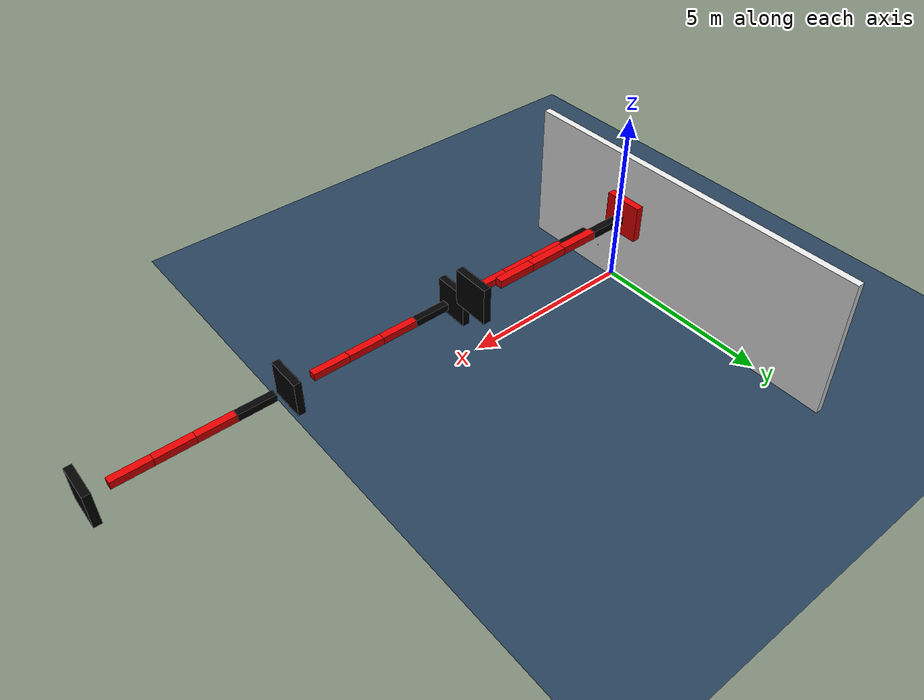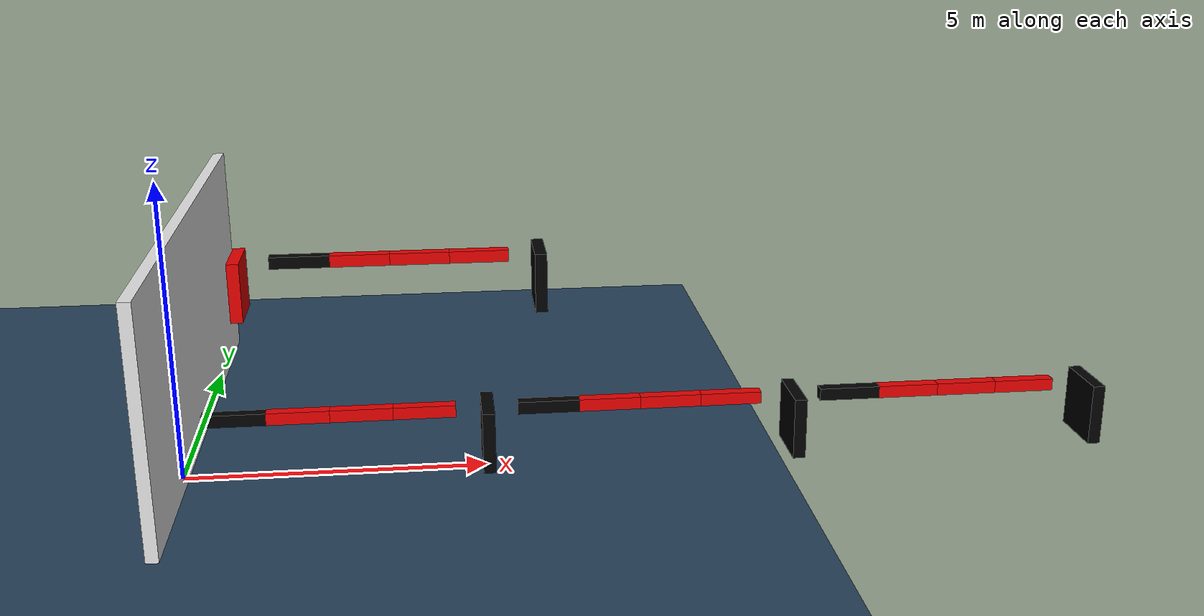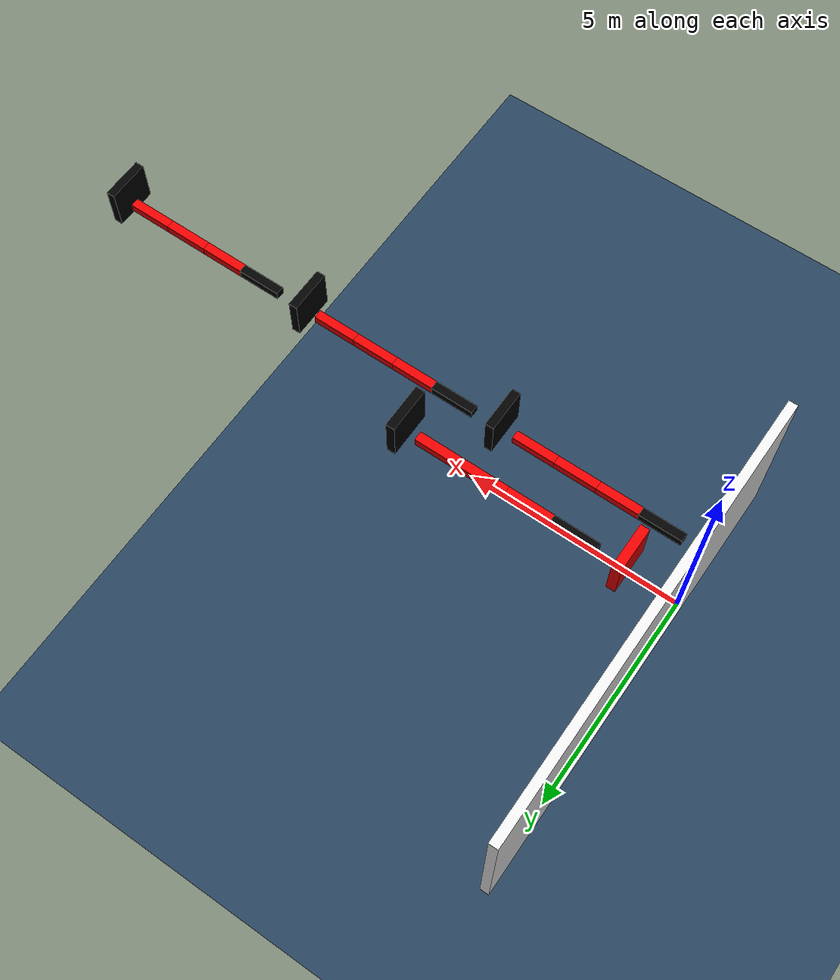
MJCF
<mujoco><option gravity="0 0 -9.81" /><worldbody><light diffuse="0.8 0.8 0.8" pos="0 0 3" dir="0 0 -1" /><geom size="10 10 .05" type="plane" material="grid" condim="3" /><body name="chassis" pos="0 2 2"><joint type="free" /><geom type="box" size=".1 5 2" rgba=".9 .9 .9 1" mass="100" /><body name="module__0module-top" pos="1 -1 1"><joint type="hinge" axis="1 0 0" range="-45 45" /><geom type="box" name="module__0geom_free_plate" size=".1 .5 .5" rgba="0.9 0 0 1" /><body name="module__0slide_box" pos="1 0.3 0.3"><joint name="module__0slide_box_joint" type="slide" axis="1 0 0" range="-0.5 0.5" /><geom type="box" name="module__0slide_box_body" size="0.5 0.1 0.1" rgba=" 0 0 0 1" /><body name="module__0hingex_box_body" pos="1 0 0"><joint name="module__0hingex_box_joint" type="hinge" axis="1 0 0" range="-45 45" /><geom type="box" name="module__0geom_hingex_box" size="0.5 0.1 0.1" rgba="0.9 0 0 1" /><body name="module__0hingey_box_body" pos="1 0 0"><joint name="module__0hingey_box_joint" type="hinge" axis="0 1 0" range="-45 45" /><geom type="box" name="module__0geom_hingey_box" size="0.5 0.1 0.1" rgba="0.9 0 0 1" /><body name="module__0hingez_box_body" pos="1 0 0"><joint name="module__0hingez_box_joint" type="hinge" axis="0 0 1" range="-45 45" /><geom type="box" name="module__0geom_hingez_box" size="0.5 0.1 0.1" rgba="0.9 0 0 1" /><body name="module__0slide_plate" pos="1 -0.3 -0.3"><joint name="module__0slide_plate_joint" type="slide" range="-0.5 0.5" /><geom type="box" name="module__0slide_plate" size="0.1 .5 .5" rgba="0 0 0 1" /></body></body></body></body></body></body><body name="module__1module-top" pos="0 -3 -1"><joint type="hinge" axis="1 0 0" range="-45 45" /><geom type="box" name="module__1geom_free_plate" size=".1 .5 .5" rgba="0.9 0 0 1" /><body name="module__1slide_box" pos="1 0.3 0.3"><joint name="module__1slide_box_joint" type="slide" axis="1 0 0" range="-0.5 0.5" /><geom type="box" name="module__1slide_box_body" size="0.5 0.1 0.1" rgba=" 0 0 0 1" /><body name="module__1hingex_box_body" pos="1 0 0"><joint name="module__1hingex_box_joint" type="hinge" axis="1 0 0" range="-45 45" /><geom type="box" name="module__1geom_hingex_box" size="0.5 0.1 0.1" rgba="0.9 0 0 1" /><body name="module__1hingey_box_body" pos="1 0 0"><joint name="module__1hingey_box_joint" type="hinge" axis="0 1 0" range="-45 45" /><geom type="box" name="module__1geom_hingey_box" size="0.5 0.1 0.1" rgba="0.9 0 0 1" /><body name="module__1hingez_box_body" pos="1 0 0"><joint name="module__1hingez_box_joint" type="hinge" axis="0 0 1" range="-45 45" /><geom type="box" name="module__1geom_hingez_box" size="0.5 0.1 0.1" rgba="0.9 0 0 1" /><body name="module__1slide_plate" pos="1 -0.3 -0.3"><joint name="module__1slide_plate_joint" type="slide" range="-0.5 0.5" /><geom type="box" name="module__1slide_plate" size="0.1 .5 .5" rgba="0 0 0 1" /><body name="module__2module-top" pos="0 0 0"><joint type="hinge" axis="1 0 0" range="-45 45" /><geom type="box" name="module__2geom_free_plate" size=".1 .5 .5" rgba="0.9 0 0 1" /><body name="module__2slide_box" pos="1 0.3 0.3"><joint name="module__2slide_box_joint" type="slide" axis="1 0 0" range="-0.5 0.5" /><geom type="box" name="module__2slide_box_body" size="0.5 0.1 0.1" rgba=" 0 0 0 1" /><body name="module__2hingex_box_body" pos="1 0 0"><joint name="module__2hingex_box_joint" type="hinge" axis="1 0 0" range="-45 45" /><geom type="box" name="module__2geom_hingex_box" size="0.5 0.1 0.1" rgba="0.9 0 0 1" /><body name="module__2hingey_box_body" pos="1 0 0"><joint name="module__2hingey_box_joint" type="hinge" axis="0 1 0" range="-45 45" /><geom type="box" name="module__2geom_hingey_box" size="0.5 0.1 0.1" rgba="0.9 0 0 1" /><body name="module__2hingez_box_body" pos="1 0 0"><joint name="module__2hingez_box_joint" type="hinge" axis="0 0 1" range="-45 45" /><geom type="box" name="module__2geom_hingez_box" size="0.5 0.1 0.1" rgba="0.9 0 0 1" /><body name="module__2slide_plate" pos="1 -0.3 -0.3"><joint name="module__2slide_plate_joint" type="slide" range="-0.5 0.5" /><geom type="box" name="module__2slide_plate" size="0.1 .5 .5" rgba="0 0 0 1" /><body name="module__3module-top" pos="0 0 0"><joint type="hinge" axis="1 0 0" range="-45 45" /><geom type="box" name="module__3geom_free_plate" size=".1 .5 .5" rgba="0.9 0 0 1" /><body name="module__3slide_box" pos="1 0.3 0.3"><joint name="module__3slide_box_joint" type="slide" axis="1 0 0" range="-0.5 0.5" /><geom type="box" name="module__3slide_box_body" size="0.5 0.1 0.1" rgba=" 0 0 0 1" /><body name="module__3hingex_box_body" pos="1 0 0"><joint name="module__3hingex_box_joint" type="hinge" axis="1 0 0" range="-45 45" /><geom type="box" name="module__3geom_hingex_box" size="0.5 0.1 0.1" rgba="0.9 0 0 1" /><body name="module__3hingey_box_body" pos="1 0 0"><joint name="module__3hingey_box_joint" type="hinge" axis="0 1 0" range="-45 45" /><geom type="box" name="module__3geom_hingey_box" size="0.5 0.1 0.1" rgba="0.9 0 0 1" /><body name="module__3hingez_box_body" pos="1 0 0"><joint name="module__3hingez_box_joint" type="hinge" axis="0 0 1" range="-45 45" /><geom type="box" name="module__3geom_hingez_box" size="0.5 0.1 0.1" rgba="0.9 0 0 1" /><body name="module__3slide_plate" pos="1 -0.3 -0.3"><joint name="module__3slide_plate_joint" type="slide" range="-0.5 0.5" /><geom type="box" name="module__3slide_plate" size="0.1 .5 .5" rgba="0 0 0 1" /></body></body></body></body></body></body><body name="module__4module-top" pos="0 0 0"><joint type="hinge" axis="1 0 0" range="-45 45" /><geom type="box" name="module__4geom_free_plate" size=".1 .5 .5" rgba="0.9 0 0 1" /><body name="module__4slide_box" pos="1 0.3 0.3"><joint name="module__4slide_box_joint" type="slide" axis="1 0 0" range="-0.5 0.5" /><geom type="box" name="module__4slide_box_body" size="0.5 0.1 0.1" rgba=" 0 0 0 1" /><body name="module__4hingex_box_body" pos="1 0 0"><joint name="module__4hingex_box_joint" type="hinge" axis="1 0 0" range="-45 45" /><geom type="box" name="module__4geom_hingex_box" size="0.5 0.1 0.1" rgba="0.9 0 0 1" /><body name="module__4hingey_box_body" pos="1 0 0"><joint name="module__4hingey_box_joint" type="hinge" axis="0 1 0" range="-45 45" /><geom type="box" name="module__4geom_hingey_box" size="0.5 0.1 0.1" rgba="0.9 0 0 1" /><body name="module__4hingez_box_body" pos="1 0 0"><joint name="module__4hingez_box_joint" type="hinge" axis="0 0 1" range="-45 45" /><geom type="box" name="module__4geom_hingez_box" size="0.5 0.1 0.1" rgba="0.9 0 0 1" /><body name="module__4slide_plate" pos="1 -0.3 -0.3"><joint name="module__4slide_plate_joint" type="slide" range="-0.5 0.5" /><geom type="box" name="module__4slide_plate" size="0.1 .5 .5" rgba="0 0 0 1" /></body></body></body></body></body></body></body></body></body></body></body></body></body></body></body></body></body></body></body></worldbody><asset><texture type="skybox" builtin="gradient" rgb1=".3 .5 .7" rgb2="0 0 0" width="512" height="512" /><texture name="body" type="cube" builtin="flat" mark="cross" width="128" height="128" rgb1="0.8 0.6 0.4" rgb2="0.8 0.6 0.4" markrgb="1 1 1" random="0.01" /><texture name="grid" type="2d" builtin="checker" width="512" height="512" rgb1=".1 .2 .3" rgb2=".2 .3 .4" /><material name="body" texture="body" texuniform="true" rgba="0.8 0.6 .4 1" /><material name="grid" texture="grid" texrepeat="1 1" texuniform="true" reflectance=".2" /></asset><actuator><velocity joint="module__0slide_box_joint" kv="2000" /></actuator></mujoco>
